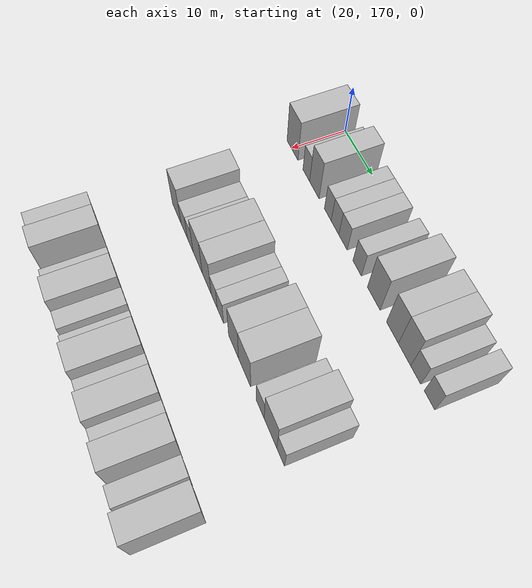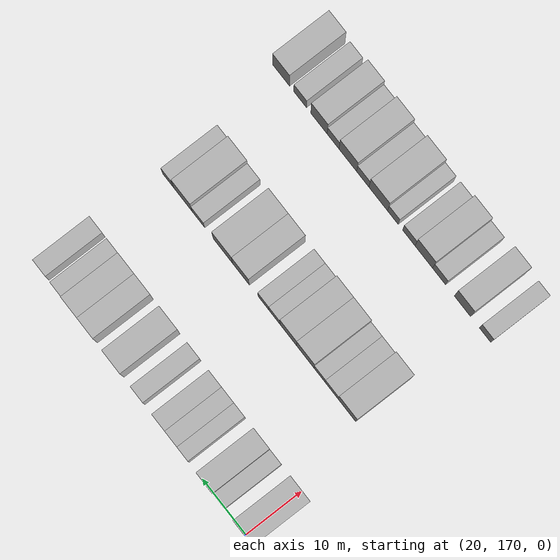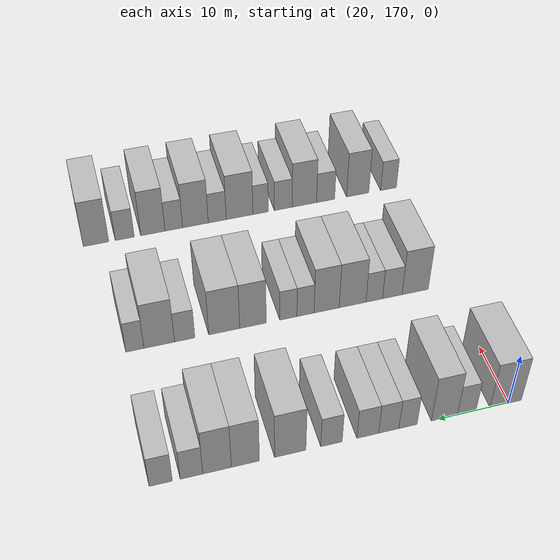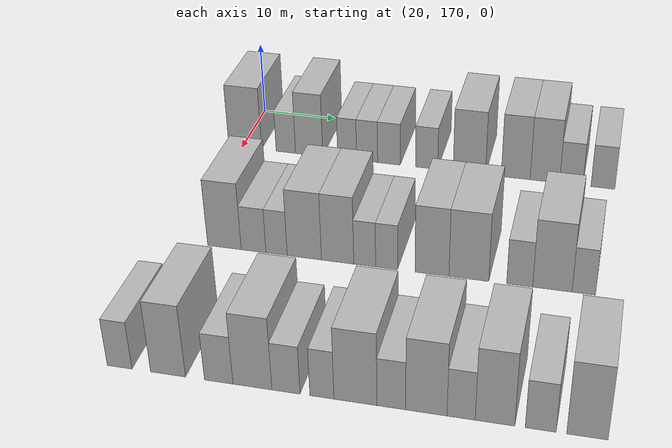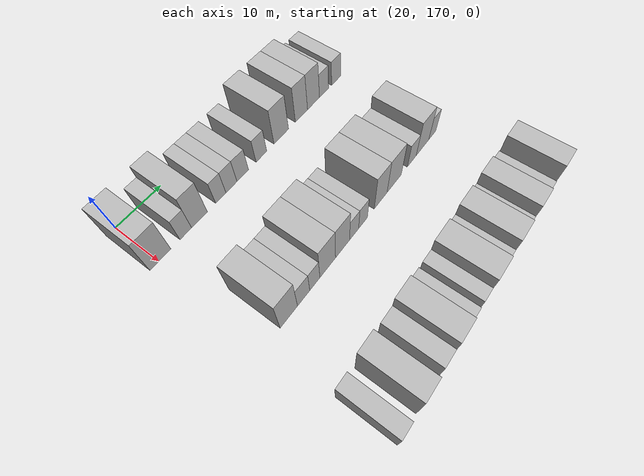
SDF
<sdf version="1.6">
 <world name="default">
  <model name="building_137">
   <static>1</static>
   <pose>25.0000 170.4152 0 0.000000 0.000000 0.000000</pose>
   <link name="link">
    <pose>0 0 4.50 0 0 0</pose>
    <collision name="collision"><geometry><box><size>10.0000 4.4914 9.0000</size></box></geometry></collision>
    <visual name="visual">
     <cast_shadows>0</cast_shadows>
     <geometry><box><size>10.0000 4.4914 9.0000</size></box></geometry>
     <material>
      <script>
       <uri>model://HANNAS_wall/materials/scripts</uri>
       <uri>model://HANNAS_wall/materials/textures</uri>
       <name>vrc/HANNAS_wall</name>
      </script>
     </material>
    </visual>
   </link>
  </model>
  <model name="building_138">
   <static>1</static>
   <pose>25.0000 175.9727 0 0.000000 0.000000 0.000000</pose>
   <link name="link">
    <pose>0 0 3.00 0 0 0</pose>
    <collision name="collision"><geometry><box><size>10.0000 2.6237 6.0000</size></box></geometry></collision>
    <visual name="visual">
     <cast_shadows>0</cast_shadows>
     <geometry><box><size>10.0000 2.6237 6.0000</size></box></geometry>
     <material>
      <script>
       <uri>model://HANNAS_wall/materials/scripts</uri>
       <uri>model://HANNAS_wall/materials/textures</uri>
       <name>vrc/HANNAS_wall</name>
      </script>
     </material>
    </visual>
   </link>
  </model>
  <model name="building_139">
   <static>1</static>
   <pose>25.0000 179.1172 0 0.000000 0.000000 0.000000</pose>
   <link name="link">
    <pose>0 0 4.50 0 0 0</pose>
    <collision name="collision"><geometry><box><size>10.0000 3.6653 9.0000</size></box></geometry></collision>
    <visual name="visual">
     <cast_shadows>0</cast_shadows>
     <geometry><box><size>10.0000 3.6653 9.0000</size></box></geometry>
     <material>
      <script>
       <uri>model://HANNAS_wall/materials/scripts</uri>
       <uri>model://HANNAS_wall/materials/textures</uri>
       <name>vrc/HANNAS_wall</name>
      </script>
     </material>
    </visual>
   </link>
  </model>
  <model name="building_140">
   <static>1</static>
   <pose>25.0000 184.2081 0 0.000000 0.000000 0.000000</pose>
   <link name="link">
    <pose>0 0 3.00 0 0 0</pose>
    <collision name="collision"><geometry><box><size>10.0000 2.5166 6.0000</size></box></geometry></collision>
    <visual name="visual">
     <cast_shadows>0</cast_shadows>
     <geometry><box><size>10.0000 2.5166 6.0000</size></box></geometry>
     <material>
      <script>
       <uri>model://HANNAS_wall/materials/scripts</uri>
       <uri>model://HANNAS_wall/materials/textures</uri>
       <name>vrc/HANNAS_wall</name>
      </script>
     </material>
    </visual>
   </link>
  </model>
  <model name="building_141">
   <static>1</static>
   <pose>25.0000 186.8565 0 0.000000 0.000000 0.000000</pose>
   <link name="link">
    <pose>0 0 3.00 0 0 0</pose>
    <collision name="collision"><geometry><box><size>10.0000 2.7800 6.0000</size></box></geometry></collision>
    <visual name="visual">
     <cast_shadows>0</cast_shadows>
     <geometry><box><size>10.0000 2.7800 6.0000</size></box></geometry>
     <material>
      <script>
       <uri>model://HANNAS_wall/materials/scripts</uri>
       <uri>model://HANNAS_wall/materials/textures</uri>
       <name>vrc/HANNAS_wall</name>
      </script>
     </material>
    </visual>
   </link>
  </model>
  <model name="building_142">
   <static>1</static>
   <pose>25.0000 189.7371 0 0.000000 0.000000 0.000000</pose>
   <link name="link">
    <pose>0 0 3.00 0 0 0</pose>
    <collision name="collision"><geometry><box><size>10.0000 2.9812 6.0000</size></box></geometry></collision>
    <visual name="visual">
     <cast_shadows>0</cast_shadows>
     <geometry><box><size>10.0000 2.9812 6.0000</size></box></geometry>
     <material>
      <script>
       <uri>model://HANNAS_wall/materials/scripts</uri>
       <uri>model://HANNAS_wall/materials/textures</uri>
       <name>vrc/HANNAS_wall</name>
      </script>
     </material>
    </visual>
   </link>
  </model>
  <model name="building_143">
   <static>1</static>
   <pose>25.0000 194.6723 0 0.000000 0.000000 0.000000</pose>
   <link name="link">
    <pose>0 0 3.00 0 0 0</pose>
    <collision name="collision"><geometry><box><size>10.0000 2.8892 6.0000</size></box></geometry></collision>
    <visual name="visual">
     <cast_shadows>0</cast_shadows>
     <geometry><box><size>10.0000 2.8892 6.0000</size></box></geometry>
     <material>
      <script>
       <uri>model://HANNAS_wall/materials/scripts</uri>
       <uri>model://HANNAS_wall/materials/textures</uri>
       <name>vrc/HANNAS_wall</name>
      </script>
     </material>
    </visual>
   </link>
  </model>
  <model name="building_144">
   <static>1</static>
   <pose>25.0000 200.1952 0 0.000000 0.000000 0.000000</pose>
   <link name="link">
    <pose>0 0 4.50 0 0 0</pose>
    <collision name="collision"><geometry><box><size>10.0000 4.1565 9.0000</size></box></geometry></collision>
    <visual name="visual">
     <cast_shadows>0</cast_shadows>
     <geometry><box><size>10.0000 4.1565 9.0000</size></box></geometry>
     <material>
      <script>
       <uri>model://HANNAS_wall/materials/scripts</uri>
       <uri>model://HANNAS_wall/materials/textures</uri>
       <name>vrc/HANNAS_wall</name>
      </script>
     </material>
    </visual>
   </link>
  </model>
  <model name="building_145">
   <static>1</static>
   <pose>25.0000 206.1058 0 0.000000 0.000000 0.000000</pose>
   <link name="link">
    <pose>0 0 4.50 0 0 0</pose>
    <collision name="collision"><geometry><box><size>10.0000 3.6646 9.0000</size></box></geometry></collision>
    <visual name="visual">
     <cast_shadows>0</cast_shadows>
     <geometry><box><size>10.0000 3.6646 9.0000</size></box></geometry>
     <material>
      <script>
       <uri>model://HANNAS_wall/materials/scripts</uri>
       <uri>model://HANNAS_wall/materials/textures</uri>
       <name>vrc/HANNAS_wall</name>
      </script>
     </material>
    </visual>
   </link>
  </model>
  <model name="building_146">
   <static>1</static>
   <pose>25.0000 209.7932 0 0.000000 0.000000 0.000000</pose>
   <link name="link">
    <pose>0 0 4.50 0 0 0</pose>
    <collision name="collision"><geometry><box><size>10.0000 3.7104 9.0000</size></box></geometry></collision>
    <visual name="visual">
     <cast_shadows>0</cast_shadows>
     <geometry><box><size>10.0000 3.7104 9.0000</size></box></geometry>
     <material>
      <script>
       <uri>model://HANNAS_wall/materials/scripts</uri>
       <uri>model://HANNAS_wall/materials/textures</uri>
       <name>vrc/HANNAS_wall</name>
      </script>
     </material>
    </visual>
   </link>
  </model>
  <model name="building_147">
   <static>1</static>
   <pose>25.0000 213.0975 0 0.000000 0.000000 0.000000</pose>
   <link name="link">
    <pose>0 0 3.00 0 0 0</pose>
    <collision name="collision"><geometry><box><size>10.0000 2.8982 6.0000</size></box></geometry></collision>
    <visual name="visual">
     <cast_shadows>0</cast_shadows>
     <geometry><box><size>10.0000 2.8982 6.0000</size></box></geometry>
     <material>
      <script>
       <uri>model://HANNAS_wall/materials/scripts</uri>
       <uri>model://HANNAS_wall/materials/textures</uri>
       <name>vrc/HANNAS_wall</name>
      </script>
     </material>
    </visual>
   </link>
  </model>
  <model name="building_148">
   <static>1</static>
   <pose>25.0000 217.0264 0 0.000000 0.000000 0.000000</pose>
   <link name="link">
    <pose>0 0 3.00 0 0 0</pose>
    <collision name="collision"><geometry><box><size>10.0000 2.9596 6.0000</size></box></geometry></collision>
    <visual name="visual">
     <cast_shadows>0</cast_shadows>
     <geometry><box><size>10.0000 2.9596 6.0000</size></box></geometry>
     <material>
      <script>
       <uri>model://HANNAS_wall/materials/scripts</uri>
       <uri>model://HANNAS_wall/materials/textures</uri>
       <name>vrc/HANNAS_wall</name>
      </script>
     </material>
    </visual>
   </link>
  </model>
  <model name="building_336">
   <static>1</static>
   <pose>47.0000 175.1035 0 0.000000 0.000000 0.000000</pose>
   <link name="link">
    <pose>0 0 4.50 0 0 0</pose>
    <collision name="collision"><geometry><box><size>10.0000 4.0680 9.0000</size></box></geometry></collision>
    <visual name="visual">
     <cast_shadows>0</cast_shadows>
     <geometry><box><size>10.0000 4.0680 9.0000</size></box></geometry>
     <material>
      <script>
       <uri>model://HANNAS_wall/materials/scripts</uri>
       <uri>model://HANNAS_wall/materials/textures</uri>
       <name>vrc/HANNAS_wall</name>
      </script>
     </material>
    </visual>
   </link>
  </model>
  <model name="building_337">
   <static>1</static>
   <pose>47.0000 178.6288 0 0.000000 0.000000 0.000000</pose>
   <link name="link">
    <pose>0 0 3.00 0 0 0</pose>
    <collision name="collision"><geometry><box><size>10.0000 2.9825 6.0000</size></box></geometry></collision>
    <visual name="visual">
     <cast_shadows>0</cast_shadows>
     <geometry><box><size>10.0000 2.9825 6.0000</size></box></geometry>
     <material>
      <script>
       <uri>model://HANNAS_wall/materials/scripts</uri>
       <uri>model://HANNAS_wall/materials/textures</uri>
       <name>vrc/HANNAS_wall</name>
      </script>
     </material>
    </visual>
   </link>
  </model>
  <model name="building_338">
   <static>1</static>
   <pose>47.0000 181.3850 0 0.000000 0.000000 0.000000</pose>
   <link name="link">
    <pose>0 0 3.00 0 0 0</pose>
    <collision name="collision"><geometry><box><size>10.0000 2.5298 6.0000</size></box></geometry></collision>
    <visual name="visual">
     <cast_shadows>0</cast_shadows>
     <geometry><box><size>10.0000 2.5298 6.0000</size></box></geometry>
     <material>
      <script>
       <uri>model://HANNAS_wall/materials/scripts</uri>
       <uri>model://HANNAS_wall/materials/textures</uri>
       <name>vrc/HANNAS_wall</name>
      </script>
     </material>
    </visual>
   </link>
  </model>
  <model name="building_339">
   <static>1</static>
   <pose>47.0000 184.6769 0 0.000000 0.000000 0.000000</pose>
   <link name="link">
    <pose>0 0 4.50 0 0 0</pose>
    <collision name="collision"><geometry><box><size>10.0000 4.0539 9.0000</size></box></geometry></collision>
    <visual name="visual">
     <cast_shadows>0</cast_shadows>
     <geometry><box><size>10.0000 4.0539 9.0000</size></box></geometry>
     <material>
      <script>
       <uri>model://HANNAS_wall/materials/scripts</uri>
       <uri>model://HANNAS_wall/materials/textures</uri>
       <name>vrc/HANNAS_wall</name>
      </script>
     </material>
    </visual>
   </link>
  </model>
  <model name="building_340">
   <static>1</static>
   <pose>47.0000 188.5991 0 0.000000 0.000000 0.000000</pose>
   <link name="link">
    <pose>0 0 4.50 0 0 0</pose>
    <collision name="collision"><geometry><box><size>10.0000 3.7904 9.0000</size></box></geometry></collision>
    <visual name="visual">
     <cast_shadows>0</cast_shadows>
     <geometry><box><size>10.0000 3.7904 9.0000</size></box></geometry>
     <material>
      <script>
       <uri>model://HANNAS_wall/materials/scripts</uri>
       <uri>model://HANNAS_wall/materials/textures</uri>
       <name>vrc/HANNAS_wall</name>
      </script>
     </material>
    </visual>
   </link>
  </model>
  <model name="building_341">
   <static>1</static>
   <pose>47.0000 191.7687 0 0.000000 0.000000 0.000000</pose>
   <link name="link">
    <pose>0 0 3.00 0 0 0</pose>
    <collision name="collision"><geometry><box><size>10.0000 2.5490 6.0000</size></box></geometry></collision>
    <visual name="visual">
     <cast_shadows>0</cast_shadows>
     <geometry><box><size>10.0000 2.5490 6.0000</size></box></geometry>
     <material>
      <script>
       <uri>model://HANNAS_wall/materials/scripts</uri>
       <uri>model://HANNAS_wall/materials/textures</uri>
       <name>vrc/HANNAS_wall</name>
      </script>
     </material>
    </visual>
   </link>
  </model>
  <model name="building_342">
   <static>1</static>
   <pose>47.0000 194.3088 0 0.000000 0.000000 0.000000</pose>
   <link name="link">
    <pose>0 0 3.00 0 0 0</pose>
    <collision name="collision"><geometry><box><size>10.0000 2.5311 6.0000</size></box></geometry></collision>
    <visual name="visual">
     <cast_shadows>0</cast_shadows>
     <geometry><box><size>10.0000 2.5311 6.0000</size></box></geometry>
     <material>
      <script>
       <uri>model://HANNAS_wall/materials/scripts</uri>
       <uri>model://HANNAS_wall/materials/textures</uri>
       <name>vrc/HANNAS_wall</name>
      </script>
     </material>
    </visual>
   </link>
  </model>
  <model name="building_343">
   <static>1</static>
   <pose>47.0000 199.5138 0 0.000000 0.000000 0.000000</pose>
   <link name="link">
    <pose>0 0 4.50 0 0 0</pose>
    <collision name="collision"><geometry><box><size>10.0000 3.8790 9.0000</size></box></geometry></collision>
    <visual name="visual">
     <cast_shadows>0</cast_shadows>
     <geometry><box><size>10.0000 3.8790 9.0000</size></box></geometry>
     <material>
      <script>
       <uri>model://HANNAS_wall/materials/scripts</uri>
       <uri>model://HANNAS_wall/materials/textures</uri>
       <name>vrc/HANNAS_wall</name>
      </script>
     </material>
    </visual>
   </link>
  </model>
  <model name="building_344">
   <static>1</static>
   <pose>47.0000 203.6959 0 0.000000 0.000000 0.000000</pose>
   <link name="link">
    <pose>0 0 4.50 0 0 0</pose>
    <collision name="collision"><geometry><box><size>10.0000 4.4853 9.0000</size></box></geometry></collision>
    <visual name="visual">
     <cast_shadows>0</cast_shadows>
     <geometry><box><size>10.0000 4.4853 9.0000</size></box></geometry>
     <material>
      <script>
       <uri>model://HANNAS_wall/materials/scripts</uri>
       <uri>model://HANNAS_wall/materials/textures</uri>
       <name>vrc/HANNAS_wall</name>
      </script>
     </material>
    </visual>
   </link>
  </model>
  <model name="building_345">
   <static>1</static>
   <pose>47.0000 209.3863 0 0.000000 0.000000 0.000000</pose>
   <link name="link">
    <pose>0 0 3.00 0 0 0</pose>
    <collision name="collision"><geometry><box><size>10.0000 2.8956 6.0000</size></box></geometry></collision>
    <visual name="visual">
     <cast_shadows>0</cast_shadows>
     <geometry><box><size>10.0000 2.8956 6.0000</size></box></geometry>
     <material>
      <script>
       <uri>model://HANNAS_wall/materials/scripts</uri>
       <uri>model://HANNAS_wall/materials/textures</uri>
       <name>vrc/HANNAS_wall</name>
      </script>
     </material>
    </visual>
   </link>
  </model>
  <model name="building_346">
   <static>1</static>
   <pose>47.0000 213.0008 0 0.000000 0.000000 0.000000</pose>
   <link name="link">
    <pose>0 0 4.50 0 0 0</pose>
    <collision name="collision"><geometry><box><size>10.0000 4.3333 9.0000</size></box></geometry></collision>
    <visual name="visual">
     <cast_shadows>0</cast_shadows>
     <geometry><box><size>10.0000 4.3333 9.0000</size></box></geometry>
     <material>
      <script>
       <uri>model://HANNAS_wall/materials/scripts</uri>
       <uri>model://HANNAS_wall/materials/textures</uri>
       <name>vrc/HANNAS_wall</name>
      </script>
     </material>
    </visual>
   </link>
  </model>
  <model name="building_347">
   <static>1</static>
   <pose>47.0000 216.4450 0 0.000000 0.000000 0.000000</pose>
   <link name="link">
    <pose>0 0 3.00 0 0 0</pose>
    <collision name="collision"><geometry><box><size>10.0000 2.5553 6.0000</size></box></geometry></collision>
    <visual name="visual">
     <cast_shadows>0</cast_shadows>
     <geometry><box><size>10.0000 2.5553 6.0000</size></box></geometry>
     <material>
      <script>
       <uri>model://HANNAS_wall/materials/scripts</uri>
       <uri>model://HANNAS_wall/materials/textures</uri>
       <name>vrc/HANNAS_wall</name>
      </script>
     </material>
    </visual>
   </link>
  </model>
  <model name="building_511">
   <static>1</static>
   <pose>69.0000 171.5109 0 0.000000 0.000000 0.000000</pose>
   <link name="link">
    <pose>0 0 3.00 0 0 0</pose>
    <collision name="collision"><geometry><box><size>10.0000 2.6534 6.0000</size></box></geometry></collision>
    <visual name="visual">
     <cast_shadows>0</cast_shadows>
     <geometry><box><size>10.0000 2.6534 6.0000</size></box></geometry>
     <material>
      <script>
       <uri>model://HANNAS_wall/materials/scripts</uri>
       <uri>model://HANNAS_wall/materials/textures</uri>
       <name>vrc/HANNAS_wall</name>
      </script>
     </material>
    </visual>
   </link>
  </model>
  <model name="building_512">
   <static>1</static>
   <pose>69.0000 176.6934 0 0.000000 0.000000 0.000000</pose>
   <link name="link">
    <pose>0 0 4.50 0 0 0</pose>
    <collision name="collision"><geometry><box><size>10.0000 3.7117 9.0000</size></box></geometry></collision>
    <visual name="visual">
     <cast_shadows>0</cast_shadows>
     <geometry><box><size>10.0000 3.7117 9.0000</size></box></geometry>
     <material>
      <script>
       <uri>model://HANNAS_wall/materials/scripts</uri>
       <uri>model://HANNAS_wall/materials/textures</uri>
       <name>vrc/HANNAS_wall</name>
      </script>
     </material>
    </visual>
   </link>
  </model>
  <model name="building_513">
   <static>1</static>
   <pose>69.0000 182.0443 0 0.000000 0.000000 0.000000</pose>
   <link name="link">
    <pose>0 0 3.00 0 0 0</pose>
    <collision name="collision"><geometry><box><size>10.0000 2.9900 6.0000</size></box></geometry></collision>
    <visual name="visual">
     <cast_shadows>0</cast_shadows>
     <geometry><box><size>10.0000 2.9900 6.0000</size></box></geometry>
     <material>
      <script>
       <uri>model://HANNAS_wall/materials/scripts</uri>
       <uri>model://HANNAS_wall/materials/textures</uri>
       <name>vrc/HANNAS_wall</name>
      </script>
     </material>
    </visual>
   </link>
  </model>
  <model name="building_514">
   <static>1</static>
   <pose>69.0000 185.5531 0 0.000000 0.000000 0.000000</pose>
   <link name="link">
    <pose>0 0 4.50 0 0 0</pose>
    <collision name="collision"><geometry><box><size>10.0000 4.0275 9.0000</size></box></geometry></collision>
    <visual name="visual">
     <cast_shadows>0</cast_shadows>
     <geometry><box><size>10.0000 4.0275 9.0000</size></box></geometry>
     <material>
      <script>
       <uri>model://HANNAS_wall/materials/scripts</uri>
       <uri>model://HANNAS_wall/materials/textures</uri>
       <name>vrc/HANNAS_wall</name>
      </script>
     </material>
    </visual>
   </link>
  </model>
  <model name="building_515">
   <static>1</static>
   <pose>69.0000 189.0104 0 0.000000 0.000000 0.000000</pose>
   <link name="link">
    <pose>0 0 3.00 0 0 0</pose>
    <collision name="collision"><geometry><box><size>10.0000 2.8871 6.0000</size></box></geometry></collision>
    <visual name="visual">
     <cast_shadows>0</cast_shadows>
     <geometry><box><size>10.0000 2.8871 6.0000</size></box></geometry>
     <material>
      <script>
       <uri>model://HANNAS_wall/materials/scripts</uri>
       <uri>model://HANNAS_wall/materials/textures</uri>
       <name>vrc/HANNAS_wall</name>
      </script>
     </material>
    </visual>
   </link>
  </model>
  <model name="building_516">
   <static>1</static>
   <pose>69.0000 192.6783 0 0.000000 0.000000 0.000000</pose>
   <link name="link">
    <pose>0 0 3.00 0 0 0</pose>
    <collision name="collision"><geometry><box><size>10.0000 2.4486 6.0000</size></box></geometry></collision>
    <visual name="visual">
     <cast_shadows>0</cast_shadows>
     <geometry><box><size>10.0000 2.4486 6.0000</size></box></geometry>
     <material>
      <script>
       <uri>model://HANNAS_wall/materials/scripts</uri>
       <uri>model://HANNAS_wall/materials/textures</uri>
       <name>vrc/HANNAS_wall</name>
      </script>
     </material>
    </visual>
   </link>
  </model>
  <model name="building_517">
   <static>1</static>
   <pose>69.0000 196.0590 0 0.000000 0.000000 0.000000</pose>
   <link name="link">
    <pose>0 0 4.50 0 0 0</pose>
    <collision name="collision"><geometry><box><size>10.0000 4.3128 9.0000</size></box></geometry></collision>
    <visual name="visual">
     <cast_shadows>0</cast_shadows>
     <geometry><box><size>10.0000 4.3128 9.0000</size></box></geometry>
     <material>
      <script>
       <uri>model://HANNAS_wall/materials/scripts</uri>
       <uri>model://HANNAS_wall/materials/textures</uri>
       <name>vrc/HANNAS_wall</name>
      </script>
     </material>
    </visual>
   </link>
  </model>
  <model name="building_518">
   <static>1</static>
   <pose>69.0000 199.6429 0 0.000000 0.000000 0.000000</pose>
   <link name="link">
    <pose>0 0 3.00 0 0 0</pose>
    <collision name="collision"><geometry><box><size>10.0000 2.8551 6.0000</size></box></geometry></collision>
    <visual name="visual">
     <cast_shadows>0</cast_shadows>
     <geometry><box><size>10.0000 2.8551 6.0000</size></box></geometry>
     <material>
      <script>
       <uri>model://HANNAS_wall/materials/scripts</uri>
       <uri>model://HANNAS_wall/materials/textures</uri>
       <name>vrc/HANNAS_wall</name>
      </script>
     </material>
    </visual>
   </link>
  </model>
  <model name="building_519">
   <static>1</static>
   <pose>69.0000 203.1033 0 0.000000 0.000000 0.000000</pose>
   <link name="link">
    <pose>0 0 4.50 0 0 0</pose>
    <collision name="collision"><geometry><box><size>10.0000 4.0655 9.0000</size></box></geometry></collision>
    <visual name="visual">
     <cast_shadows>0</cast_shadows>
     <geometry><box><size>10.0000 4.0655 9.0000</size></box></geometry>
     <material>
      <script>
       <uri>model://HANNAS_wall/materials/scripts</uri>
       <uri>model://HANNAS_wall/materials/textures</uri>
       <name>vrc/HANNAS_wall</name>
      </script>
     </material>
    </visual>
   </link>
  </model>
  <model name="building_520">
   <static>1</static>
   <pose>69.0000 206.5088 0 0.000000 0.000000 0.000000</pose>
   <link name="link">
    <pose>0 0 3.00 0 0 0</pose>
    <collision name="collision"><geometry><box><size>10.0000 2.7456 6.0000</size></box></geometry></collision>
    <visual name="visual">
     <cast_shadows>0</cast_shadows>
     <geometry><box><size>10.0000 2.7456 6.0000</size></box></geometry>
     <material>
      <script>
       <uri>model://HANNAS_wall/materials/scripts</uri>
       <uri>model://HANNAS_wall/materials/textures</uri>
       <name>vrc/HANNAS_wall</name>
      </script>
     </material>
    </visual>
   </link>
  </model>
  <model name="building_521">
   <static>1</static>
   <pose>69.0000 209.7824 0 0.000000 0.000000 0.000000</pose>
   <link name="link">
    <pose>0 0 4.50 0 0 0</pose>
    <collision name="collision"><geometry><box><size>10.0000 3.8015 9.0000</size></box></geometry></collision>
    <visual name="visual">
     <cast_shadows>0</cast_shadows>
     <geometry><box><size>10.0000 3.8015 9.0000</size></box></geometry>
     <material>
      <script>
       <uri>model://HANNAS_wall/materials/scripts</uri>
       <uri>model://HANNAS_wall/materials/textures</uri>
       <name>vrc/HANNAS_wall</name>
      </script>
     </material>
    </visual>
   </link>
  </model>
  <model name="building_522">
   <static>1</static>
   <pose>69.0000 214.1511 0 0.000000 0.000000 0.000000</pose>
   <link name="link">
    <pose>0 0 3.00 0 0 0</pose>
    <collision name="collision"><geometry><box><size>10.0000 2.9359 6.0000</size></box></geometry></collision>
    <visual name="visual">
     <cast_shadows>0</cast_shadows>
     <geometry><box><size>10.0000 2.9359 6.0000</size></box></geometry>
     <material>
      <script>
       <uri>model://HANNAS_wall/materials/scripts</uri>
       <uri>model://HANNAS_wall/materials/textures</uri>
       <name>vrc/HANNAS_wall</name>
      </script>
     </material>
    </visual>
   </link>
  </model>
  <model name="building_523">
   <static>1</static>
   <pose>69.0000 218.5629 0 0.000000 0.000000 0.000000</pose>
   <link name="link">
    <pose>0 0 4.50 0 0 0</pose>
    <collision name="collision"><geometry><box><size>10.0000 3.8876 9.0000</size></box></geometry></collision>
    <visual name="visual">
     <cast_shadows>0</cast_shadows>
     <geometry><box><size>10.0000 3.8876 9.0000</size></box></geometry>
     <material>
      <script>
       <uri>model://HANNAS_wall/materials/scripts</uri>
       <uri>model://HANNAS_wall/materials/textures</uri>
       <name>vrc/HANNAS_wall</name>
      </script>
     </material>
    </visual>
   </link>
  </model>
 </world>
</sdf>
